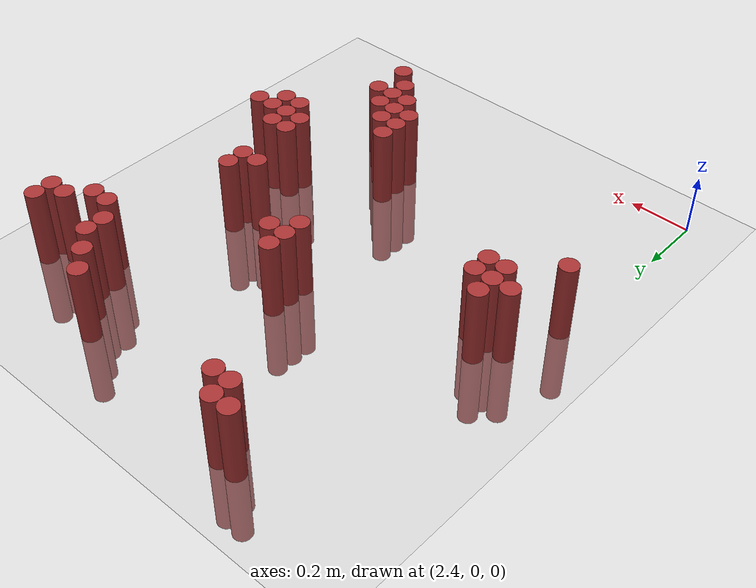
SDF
<sdf version="1.6">
 <world name="default">
  <model name="ground_plane">
   <static>1</static>
   <link name="link">
    <collision name="collision">
     <geometry><plane><normal>0 0 1</normal><size>100 100</size></plane></geometry>
     <surface><friction><ode><mu>100</mu><mu2>50</mu2></ode></friction></surface>
    </collision>
    <visual name="visual">
     <cast_shadows>0</cast_shadows>
     <geometry><plane><normal>0 0 1</normal><size>100 100</size></plane></geometry>
     <material>
      <script><uri>file://media/materials/scripts/gazebo.material</uri><name>Gazebo/Grey</name></script>
     </material>
    </visual>
   </link>
  </model>
  <model name="unit_cylinder_151">
   <static>1</static>
   <pose>2.730000 1.590000 0.000000 0.000000 0.000000 0.000000</pose>
   <link name="link">
    <inertial>
     <mass>1</mass>
     <inertia><ixx>0.145833</ixx><ixy>0</ixy><ixz>0</ixz><iyy>0.145833</iyy><iyz>0</iyz><izz>0.125</izz></inertia>
    </inertial>
    <collision name="collision">
     <geometry><cylinder><radius>0.030000</radius><length>0.5</length></cylinder></geometry>
    </collision>
    <visual name="visual">
     <geometry><cylinder><radius>0.030000</radius><length>0.5</length></cylinder></geometry>
     <material>
      <ambient>0.648000 0.192000 0.192000 1</ambient>
      <diffuse>0.648000 0.192000 0.192000 1</diffuse>
     </material>
     <material>
      <script><name>Gazebo/Grey</name><uri>file://media/materials/scripts/gazebo.material</uri></script>
     </material>
    </visual>
   </link>
  </model>
  <model name="unit_cylinder_152">
   <static>1</static>
   <pose>2.790000 1.590000 0.000000 0.000000 0.000000 0.000000</pose>
   <link name="link">
    <inertial>
     <mass>1</mass>
     <inertia><ixx>0.145833</ixx><ixy>0</ixy><ixz>0</ixz><iyy>0.145833</iyy><iyz>0</iyz><izz>0.125</izz></inertia>
    </inertial>
    <collision name="collision">
     <geometry><cylinder><radius>0.030000</radius><length>0.5</length></cylinder></geometry>
    </collision>
    <visual name="visual">
     <geometry><cylinder><radius>0.030000</radius><length>0.5</length></cylinder></geometry>
     <material>
      <ambient>0.648000 0.192000 0.192000 1</ambient>
      <diffuse>0.648000 0.192000 0.192000 1</diffuse>
     </material>
     <material>
      <script><name>Gazebo/Grey</name><uri>file://media/materials/scripts/gazebo.material</uri></script>
     </material>
    </visual>
   </link>
  </model>
  <model name="unit_cylinder_156">
   <static>1</static>
   <pose>2.790000 1.530000 0.000000 0.000000 0.000000 0.000000</pose>
   <link name="link">
    <inertial>
     <mass>1</mass>
     <inertia><ixx>0.145833</ixx><ixy>0</ixy><ixz>0</ixz><iyy>0.145833</iyy><iyz>0</iyz><izz>0.125</izz></inertia>
    </inertial>
    <collision name="collision">
     <geometry><cylinder><radius>0.030000</radius><length>0.5</length></cylinder></geometry>
    </collision>
    <visual name="visual">
     <geometry><cylinder><radius>0.030000</radius><length>0.5</length></cylinder></geometry>
     <material>
      <ambient>0.648000 0.192000 0.192000 1</ambient>
      <diffuse>0.648000 0.192000 0.192000 1</diffuse>
     </material>
     <material>
      <script><name>Gazebo/Grey</name><uri>file://media/materials/scripts/gazebo.material</uri></script>
     </material>
    </visual>
   </link>
  </model>
  <model name="unit_cylinder_157">
   <static>1</static>
   <pose>2.850000 1.530000 0.000000 0.000000 0.000000 0.000000</pose>
   <link name="link">
    <inertial>
     <mass>1</mass>
     <inertia><ixx>0.145833</ixx><ixy>0</ixy><ixz>0</ixz><iyy>0.145833</iyy><iyz>0</iyz><izz>0.125</izz></inertia>
    </inertial>
    <collision name="collision">
     <geometry><cylinder><radius>0.030000</radius><length>0.5</length></cylinder></geometry>
    </collision>
    <visual name="visual">
     <geometry><cylinder><radius>0.030000</radius><length>0.5</length></cylinder></geometry>
     <material>
      <ambient>0.648000 0.192000 0.192000 1</ambient>
      <diffuse>0.648000 0.192000 0.192000 1</diffuse>
     </material>
     <material>
      <script><name>Gazebo/Grey</name><uri>file://media/materials/scripts/gazebo.material</uri></script>
     </material>
    </visual>
   </link>
  </model>
  <model name="unit_cylinder_158">
   <static>1</static>
   <pose>3.390000 1.530000 0.000000 0.000000 0.000000 0.000000</pose>
   <link name="link">
    <inertial>
     <mass>1</mass>
     <inertia><ixx>0.145833</ixx><ixy>0</ixy><ixz>0</ixz><iyy>0.145833</iyy><iyz>0</iyz><izz>0.125</izz></inertia>
    </inertial>
    <collision name="collision">
     <geometry><cylinder><radius>0.030000</radius><length>0.5</length></cylinder></geometry>
    </collision>
    <visual name="visual">
     <geometry><cylinder><radius>0.030000</radius><length>0.5</length></cylinder></geometry>
     <material>
      <ambient>0.648000 0.192000 0.192000 1</ambient>
      <diffuse>0.648000 0.192000 0.192000 1</diffuse>
     </material>
     <material>
      <script><name>Gazebo/Grey</name><uri>file://media/materials/scripts/gazebo.material</uri></script>
     </material>
    </visual>
   </link>
  </model>
  <model name="unit_cylinder_159">
   <static>1</static>
   <pose>3.450000 1.470000 0.000000 0.000000 0.000000 0.000000</pose>
   <link name="link">
    <inertial>
     <mass>1</mass>
     <inertia><ixx>0.145833</ixx><ixy>0</ixy><ixz>0</ixz><iyy>0.145833</iyy><iyz>0</iyz><izz>0.125</izz></inertia>
    </inertial>
    <collision name="collision">
     <geometry><cylinder><radius>0.030000</radius><length>0.5</length></cylinder></geometry>
    </collision>
    <visual name="visual">
     <geometry><cylinder><radius>0.030000</radius><length>0.5</length></cylinder></geometry>
     <material>
      <ambient>0.648000 0.192000 0.192000 1</ambient>
      <diffuse>0.648000 0.192000 0.192000 1</diffuse>
     </material>
     <material>
      <script><name>Gazebo/Grey</name><uri>file://media/materials/scripts/gazebo.material</uri></script>
     </material>
    </visual>
   </link>
  </model>
  <model name="unit_cylinder_160">
   <static>1</static>
   <pose>3.510000 1.410000 0.000000 0.000000 0.000000 0.000000</pose>
   <link name="link">
    <inertial>
     <mass>1</mass>
     <inertia><ixx>0.145833</ixx><ixy>0</ixy><ixz>0</ixz><iyy>0.145833</iyy><iyz>0</iyz><izz>0.125</izz></inertia>
    </inertial>
    <collision name="collision">
     <geometry><cylinder><radius>0.030000</radius><length>0.5</length></cylinder></geometry>
    </collision>
    <visual name="visual">
     <geometry><cylinder><radius>0.030000</radius><length>0.5</length></cylinder></geometry>
     <material>
      <ambient>0.648000 0.192000 0.192000 1</ambient>
      <diffuse>0.648000 0.192000 0.192000 1</diffuse>
     </material>
     <material>
      <script><name>Gazebo/Grey</name><uri>file://media/materials/scripts/gazebo.material</uri></script>
     </material>
    </visual>
   </link>
  </model>
  <model name="unit_cylinder_161">
   <static>1</static>
   <pose>3.750000 1.410000 0.000000 0.000000 0.000000 0.000000</pose>
   <link name="link">
    <inertial>
     <mass>1</mass>
     <inertia><ixx>0.145833</ixx><ixy>0</ixy><ixz>0</ixz><iyy>0.145833</iyy><iyz>0</iyz><izz>0.125</izz></inertia>
    </inertial>
    <collision name="collision">
     <geometry><cylinder><radius>0.030000</radius><length>0.5</length></cylinder></geometry>
    </collision>
    <visual name="visual">
     <geometry><cylinder><radius>0.030000</radius><length>0.5</length></cylinder></geometry>
     <material>
      <ambient>0.648000 0.192000 0.192000 1</ambient>
      <diffuse>0.648000 0.192000 0.192000 1</diffuse>
     </material>
     <material>
      <script><name>Gazebo/Grey</name><uri>file://media/materials/scripts/gazebo.material</uri></script>
     </material>
    </visual>
   </link>
  </model>
  <model name="unit_cylinder_162">
   <static>1</static>
   <pose>3.510000 1.350000 0.000000 0.000000 0.000000 0.000000</pose>
   <link name="link">
    <inertial>
     <mass>1</mass>
     <inertia><ixx>0.145833</ixx><ixy>0</ixy><ixz>0</ixz><iyy>0.145833</iyy><iyz>0</iyz><izz>0.125</izz></inertia>
    </inertial>
    <collision name="collision">
     <geometry><cylinder><radius>0.030000</radius><length>0.5</length></cylinder></geometry>
    </collision>
    <visual name="visual">
     <geometry><cylinder><radius>0.030000</radius><length>0.5</length></cylinder></geometry>
     <material>
      <ambient>0.648000 0.192000 0.192000 1</ambient>
      <diffuse>0.648000 0.192000 0.192000 1</diffuse>
     </material>
     <material>
      <script><name>Gazebo/Grey</name><uri>file://media/materials/scripts/gazebo.material</uri></script>
     </material>
    </visual>
   </link>
  </model>
  <model name="unit_cylinder_163">
   <static>1</static>
   <pose>3.690000 1.350000 0.000000 0.000000 0.000000 0.000000</pose>
   <link name="link">
    <inertial>
     <mass>1</mass>
     <inertia><ixx>0.145833</ixx><ixy>0</ixy><ixz>0</ixz><iyy>0.145833</iyy><iyz>0</iyz><izz>0.125</izz></inertia>
    </inertial>
    <collision name="collision">
     <geometry><cylinder><radius>0.030000</radius><length>0.5</length></cylinder></geometry>
    </collision>
    <visual name="visual">
     <geometry><cylinder><radius>0.030000</radius><length>0.5</length></cylinder></geometry>
     <material>
      <ambient>0.648000 0.192000 0.192000 1</ambient>
      <diffuse>0.648000 0.192000 0.192000 1</diffuse>
     </material>
     <material>
      <script><name>Gazebo/Grey</name><uri>file://media/materials/scripts/gazebo.material</uri></script>
     </material>
    </visual>
   </link>
  </model>
  <model name="unit_cylinder_164">
   <static>1</static>
   <pose>3.750000 1.350000 0.000000 0.000000 0.000000 0.000000</pose>
   <link name="link">
    <inertial>
     <mass>1</mass>
     <inertia><ixx>0.145833</ixx><ixy>0</ixy><ixz>0</ixz><iyy>0.145833</iyy><iyz>0</iyz><izz>0.125</izz></inertia>
    </inertial>
    <collision name="collision">
     <geometry><cylinder><radius>0.030000</radius><length>0.5</length></cylinder></geometry>
    </collision>
    <visual name="visual">
     <geometry><cylinder><radius>0.030000</radius><length>0.5</length></cylinder></geometry>
     <material>
      <ambient>0.648000 0.192000 0.192000 1</ambient>
      <diffuse>0.648000 0.192000 0.192000 1</diffuse>
     </material>
     <material>
      <script><name>Gazebo/Grey</name><uri>file://media/materials/scripts/gazebo.material</uri></script>
     </material>
    </visual>
   </link>
  </model>
  <model name="unit_cylinder_167">
   <static>1</static>
   <pose>3.570000 1.290000 0.000000 0.000000 0.000000 0.000000</pose>
   <link name="link">
    <inertial>
     <mass>1</mass>
     <inertia><ixx>0.145833</ixx><ixy>0</ixy><ixz>0</ixz><iyy>0.145833</iyy><iyz>0</iyz><izz>0.125</izz></inertia>
    </inertial>
    <collision name="collision">
     <geometry><cylinder><radius>0.030000</radius><length>0.5</length></cylinder></geometry>
    </collision>
    <visual name="visual">
     <geometry><cylinder><radius>0.030000</radius><length>0.5</length></cylinder></geometry>
     <material>
      <ambient>0.648000 0.192000 0.192000 1</ambient>
      <diffuse>0.648000 0.192000 0.192000 1</diffuse>
     </material>
     <material>
      <script><name>Gazebo/Grey</name><uri>file://media/materials/scripts/gazebo.material</uri></script>
     </material>
    </visual>
   </link>
  </model>
  <model name="unit_cylinder_168">
   <static>1</static>
   <pose>3.630000 1.290000 0.000000 0.000000 0.000000 0.000000</pose>
   <link name="link">
    <inertial>
     <mass>1</mass>
     <inertia><ixx>0.145833</ixx><ixy>0</ixy><ixz>0</ixz><iyy>0.145833</iyy><iyz>0</iyz><izz>0.125</izz></inertia>
    </inertial>
    <collision name="collision">
     <geometry><cylinder><radius>0.030000</radius><length>0.5</length></cylinder></geometry>
    </collision>
    <visual name="visual">
     <geometry><cylinder><radius>0.030000</radius><length>0.5</length></cylinder></geometry>
     <material>
      <ambient>0.648000 0.192000 0.192000 1</ambient>
      <diffuse>0.648000 0.192000 0.192000 1</diffuse>
     </material>
     <material>
      <script><name>Gazebo/Grey</name><uri>file://media/materials/scripts/gazebo.material</uri></script>
     </material>
    </visual>
   </link>
  </model>
  <model name="unit_cylinder_172">
   <static>1</static>
   <pose>3.090000 1.110000 0.000000 0.000000 0.000000 0.000000</pose>
   <link name="link">
    <inertial>
     <mass>1</mass>
     <inertia><ixx>0.145833</ixx><ixy>0</ixy><ixz>0</ixz><iyy>0.145833</iyy><iyz>0</iyz><izz>0.125</izz></inertia>
    </inertial>
    <collision name="collision">
     <geometry><cylinder><radius>0.030000</radius><length>0.5</length></cylinder></geometry>
    </collision>
    <visual name="visual">
     <geometry><cylinder><radius>0.030000</radius><length>0.5</length></cylinder></geometry>
     <material>
      <ambient>0.648000 0.192000 0.192000 1</ambient>
      <diffuse>0.648000 0.192000 0.192000 1</diffuse>
     </material>
     <material>
      <script><name>Gazebo/Grey</name><uri>file://media/materials/scripts/gazebo.material</uri></script>
     </material>
    </visual>
   </link>
  </model>
  <model name="unit_cylinder_174">
   <static>1</static>
   <pose>3.090000 1.050000 0.000000 0.000000 0.000000 0.000000</pose>
   <link name="link">
    <inertial>
     <mass>1</mass>
     <inertia><ixx>0.145833</ixx><ixy>0</ixy><ixz>0</ixz><iyy>0.145833</iyy><iyz>0</iyz><izz>0.125</izz></inertia>
    </inertial>
    <collision name="collision">
     <geometry><cylinder><radius>0.030000</radius><length>0.5</length></cylinder></geometry>
    </collision>
    <visual name="visual">
     <geometry><cylinder><radius>0.030000</radius><length>0.5</length></cylinder></geometry>
     <material>
      <ambient>0.648000 0.192000 0.192000 1</ambient>
      <diffuse>0.648000 0.192000 0.192000 1</diffuse>
     </material>
     <material>
      <script><name>Gazebo/Grey</name><uri>file://media/materials/scripts/gazebo.material</uri></script>
     </material>
    </visual>
   </link>
  </model>
  <model name="unit_cylinder_175">
   <static>1</static>
   <pose>3.150000 1.050000 0.000000 0.000000 0.000000 0.000000</pose>
   <link name="link">
    <inertial>
     <mass>1</mass>
     <inertia><ixx>0.145833</ixx><ixy>0</ixy><ixz>0</ixz><iyy>0.145833</iyy><iyz>0</iyz><izz>0.125</izz></inertia>
    </inertial>
    <collision name="collision">
     <geometry><cylinder><radius>0.030000</radius><length>0.5</length></cylinder></geometry>
    </collision>
    <visual name="visual">
     <geometry><cylinder><radius>0.030000</radius><length>0.5</length></cylinder></geometry>
     <material>
      <ambient>0.648000 0.192000 0.192000 1</ambient>
      <diffuse>0.648000 0.192000 0.192000 1</diffuse>
     </material>
     <material>
      <script><name>Gazebo/Grey</name><uri>file://media/materials/scripts/gazebo.material</uri></script>
     </material>
    </visual>
   </link>
  </model>
  <model name="unit_cylinder_178">
   <static>1</static>
   <pose>3.090000 0.990000 0.000000 0.000000 0.000000 0.000000</pose>
   <link name="link">
    <inertial>
     <mass>1</mass>
     <inertia><ixx>0.145833</ixx><ixy>0</ixy><ixz>0</ixz><iyy>0.145833</iyy><iyz>0</iyz><izz>0.125</izz></inertia>
    </inertial>
    <collision name="collision">
     <geometry><cylinder><radius>0.030000</radius><length>0.5</length></cylinder></geometry>
    </collision>
    <visual name="visual">
     <geometry><cylinder><radius>0.030000</radius><length>0.5</length></cylinder></geometry>
     <material>
      <ambient>0.648000 0.192000 0.192000 1</ambient>
      <diffuse>0.648000 0.192000 0.192000 1</diffuse>
     </material>
     <material>
      <script><name>Gazebo/Grey</name><uri>file://media/materials/scripts/gazebo.material</uri></script>
     </material>
    </visual>
   </link>
  </model>
  <model name="unit_cylinder_181">
   <static>1</static>
   <pose>3.450000 0.930000 0.000000 0.000000 0.000000 0.000000</pose>
   <link name="link">
    <inertial>
     <mass>1</mass>
     <inertia><ixx>0.145833</ixx><ixy>0</ixy><ixz>0</ixz><iyy>0.145833</iyy><iyz>0</iyz><izz>0.125</izz></inertia>
    </inertial>
    <collision name="collision">
     <geometry><cylinder><radius>0.030000</radius><length>0.5</length></cylinder></geometry>
    </collision>
    <visual name="visual">
     <geometry><cylinder><radius>0.030000</radius><length>0.5</length></cylinder></geometry>
     <material>
      <ambient>0.648000 0.192000 0.192000 1</ambient>
      <diffuse>0.648000 0.192000 0.192000 1</diffuse>
     </material>
     <material>
      <script><name>Gazebo/Grey</name><uri>file://media/materials/scripts/gazebo.material</uri></script>
     </material>
    </visual>
   </link>
  </model>
  <model name="unit_cylinder_182">
   <static>1</static>
   <pose>2.550000 0.870000 0.000000 0.000000 0.000000 0.000000</pose>
   <link name="link">
    <inertial>
     <mass>1</mass>
     <inertia><ixx>0.145833</ixx><ixy>0</ixy><ixz>0</ixz><iyy>0.145833</iyy><iyz>0</iyz><izz>0.125</izz></inertia>
    </inertial>
    <collision name="collision">
     <geometry><cylinder><radius>0.030000</radius><length>0.5</length></cylinder></geometry>
    </collision>
    <visual name="visual">
     <geometry><cylinder><radius>0.030000</radius><length>0.5</length></cylinder></geometry>
     <material>
      <ambient>0.648000 0.192000 0.192000 1</ambient>
      <diffuse>0.648000 0.192000 0.192000 1</diffuse>
     </material>
     <material>
      <script><name>Gazebo/Grey</name><uri>file://media/materials/scripts/gazebo.material</uri></script>
     </material>
    </visual>
   </link>
  </model>
  <model name="unit_cylinder_183">
   <static>1</static>
   <pose>3.390000 0.870000 0.000000 0.000000 0.000000 0.000000</pose>
   <link name="link">
    <inertial>
     <mass>1</mass>
     <inertia><ixx>0.145833</ixx><ixy>0</ixy><ixz>0</ixz><iyy>0.145833</iyy><iyz>0</iyz><izz>0.125</izz></inertia>
    </inertial>
    <collision name="collision">
     <geometry><cylinder><radius>0.030000</radius><length>0.5</length></cylinder></geometry>
    </collision>
    <visual name="visual">
     <geometry><cylinder><radius>0.030000</radius><length>0.5</length></cylinder></geometry>
     <material>
      <ambient>0.648000 0.192000 0.192000 1</ambient>
      <diffuse>0.648000 0.192000 0.192000 1</diffuse>
     </material>
     <material>
      <script><name>Gazebo/Grey</name><uri>file://media/materials/scripts/gazebo.material</uri></script>
     </material>
    </visual>
   </link>
  </model>
  <model name="unit_cylinder_184">
   <static>1</static>
   <pose>3.450000 0.870000 0.000000 0.000000 0.000000 0.000000</pose>
   <link name="link">
    <inertial>
     <mass>1</mass>
     <inertia><ixx>0.145833</ixx><ixy>0</ixy><ixz>0</ixz><iyy>0.145833</iyy><iyz>0</iyz><izz>0.125</izz></inertia>
    </inertial>
    <collision name="collision">
     <geometry><cylinder><radius>0.030000</radius><length>0.5</length></cylinder></geometry>
    </collision>
    <visual name="visual">
     <geometry><cylinder><radius>0.030000</radius><length>0.5</length></cylinder></geometry>
     <material>
      <ambient>0.648000 0.192000 0.192000 1</ambient>
      <diffuse>0.648000 0.192000 0.192000 1</diffuse>
     </material>
     <material>
      <script><name>Gazebo/Grey</name><uri>file://media/materials/scripts/gazebo.material</uri></script>
     </material>
    </visual>
   </link>
  </model>
  <model name="unit_cylinder_185">
   <static>1</static>
   <pose>2.490000 0.810000 0.000000 0.000000 0.000000 0.000000</pose>
   <link name="link">
    <inertial>
     <mass>1</mass>
     <inertia><ixx>0.145833</ixx><ixy>0</ixy><ixz>0</ixz><iyy>0.145833</iyy><iyz>0</iyz><izz>0.125</izz></inertia>
    </inertial>
    <collision name="collision">
     <geometry><cylinder><radius>0.030000</radius><length>0.5</length></cylinder></geometry>
    </collision>
    <visual name="visual">
     <geometry><cylinder><radius>0.030000</radius><length>0.5</length></cylinder></geometry>
     <material>
      <ambient>0.648000 0.192000 0.192000 1</ambient>
      <diffuse>0.648000 0.192000 0.192000 1</diffuse>
     </material>
     <material>
      <script><name>Gazebo/Grey</name><uri>file://media/materials/scripts/gazebo.material</uri></script>
     </material>
    </visual>
   </link>
  </model>
  <model name="unit_cylinder_186">
   <static>1</static>
   <pose>2.550000 0.810000 0.000000 0.000000 0.000000 0.000000</pose>
   <link name="link">
    <inertial>
     <mass>1</mass>
     <inertia><ixx>0.145833</ixx><ixy>0</ixy><ixz>0</ixz><iyy>0.145833</iyy><iyz>0</iyz><izz>0.125</izz></inertia>
    </inertial>
    <collision name="collision">
     <geometry><cylinder><radius>0.030000</radius><length>0.5</length></cylinder></geometry>
    </collision>
    <visual name="visual">
     <geometry><cylinder><radius>0.030000</radius><length>0.5</length></cylinder></geometry>
     <material>
      <ambient>0.648000 0.192000 0.192000 1</ambient>
      <diffuse>0.648000 0.192000 0.192000 1</diffuse>
     </material>
     <material>
      <script><name>Gazebo/Grey</name><uri>file://media/materials/scripts/gazebo.material</uri></script>
     </material>
    </visual>
   </link>
  </model>
  <model name="unit_cylinder_187">
   <static>1</static>
   <pose>2.610000 0.810000 0.000000 0.000000 0.000000 0.000000</pose>
   <link name="link">
    <inertial>
     <mass>1</mass>
     <inertia><ixx>0.145833</ixx><ixy>0</ixy><ixz>0</ixz><iyy>0.145833</iyy><iyz>0</iyz><izz>0.125</izz></inertia>
    </inertial>
    <collision name="collision">
     <geometry><cylinder><radius>0.030000</radius><length>0.5</length></cylinder></geometry>
    </collision>
    <visual name="visual">
     <geometry><cylinder><radius>0.030000</radius><length>0.5</length></cylinder></geometry>
     <material>
      <ambient>0.648000 0.192000 0.192000 1</ambient>
      <diffuse>0.648000 0.192000 0.192000 1</diffuse>
     </material>
     <material>
      <script><name>Gazebo/Grey</name><uri>file://media/materials/scripts/gazebo.material</uri></script>
     </material>
    </visual>
   </link>
  </model>
  <model name="unit_cylinder_188">
   <static>1</static>
   <pose>2.550000 0.750000 0.000000 0.000000 0.000000 0.000000</pose>
   <link name="link">
    <inertial>
     <mass>1</mass>
     <inertia><ixx>0.145833</ixx><ixy>0</ixy><ixz>0</ixz><iyy>0.145833</iyy><iyz>0</iyz><izz>0.125</izz></inertia>
    </inertial>
    <collision name="collision">
     <geometry><cylinder><radius>0.030000</radius><length>0.5</length></cylinder></geometry>
    </collision>
    <visual name="visual">
     <geometry><cylinder><radius>0.030000</radius><length>0.5</length></cylinder></geometry>
     <material>
      <ambient>0.648000 0.192000 0.192000 1</ambient>
      <diffuse>0.648000 0.192000 0.192000 1</diffuse>
     </material>
     <material>
      <script><name>Gazebo/Grey</name><uri>file://media/materials/scripts/gazebo.material</uri></script>
     </material>
    </visual>
   </link>
  </model>
  <model name="unit_cylinder_189">
   <static>1</static>
   <pose>2.610000 0.750000 0.000000 0.000000 0.000000 0.000000</pose>
   <link name="link">
    <inertial>
     <mass>1</mass>
     <inertia><ixx>0.145833</ixx><ixy>0</ixy><ixz>0</ixz><iyy>0.145833</iyy><iyz>0</iyz><izz>0.125</izz></inertia>
    </inertial>
    <collision name="collision">
     <geometry><cylinder><radius>0.030000</radius><length>0.5</length></cylinder></geometry>
    </collision>
    <visual name="visual">
     <geometry><cylinder><radius>0.030000</radius><length>0.5</length></cylinder></geometry>
     <material>
      <ambient>0.648000 0.192000 0.192000 1</ambient>
      <diffuse>0.648000 0.192000 0.192000 1</diffuse>
     </material>
     <material>
      <script><name>Gazebo/Grey</name><uri>file://media/materials/scripts/gazebo.material</uri></script>
     </material>
    </visual>
   </link>
  </model>
  <model name="unit_cylinder_191">
   <static>1</static>
   <pose>3.450000 0.690000 0.000000 0.000000 0.000000 0.000000</pose>
   <link name="link">
    <inertial>
     <mass>1</mass>
     <inertia><ixx>0.145833</ixx><ixy>0</ixy><ixz>0</ixz><iyy>0.145833</iyy><iyz>0</iyz><izz>0.125</izz></inertia>
    </inertial>
    <collision name="collision">
     <geometry><cylinder><radius>0.030000</radius><length>0.5</length></cylinder></geometry>
    </collision>
    <visual name="visual">
     <geometry><cylinder><radius>0.030000</radius><length>0.5</length></cylinder></geometry>
     <material>
      <ambient>0.648000 0.192000 0.192000 1</ambient>
      <diffuse>0.648000 0.192000 0.192000 1</diffuse>
     </material>
     <material>
      <script><name>Gazebo/Grey</name><uri>file://media/materials/scripts/gazebo.material</uri></script>
     </material>
    </visual>
   </link>
  </model>
  <model name="unit_cylinder_192">
   <static>1</static>
   <pose>3.510000 0.690000 0.000000 0.000000 0.000000 0.000000</pose>
   <link name="link">
    <inertial>
     <mass>1</mass>
     <inertia><ixx>0.145833</ixx><ixy>0</ixy><ixz>0</ixz><iyy>0.145833</iyy><iyz>0</iyz><izz>0.125</izz></inertia>
    </inertial>
    <collision name="collision">
     <geometry><cylinder><radius>0.030000</radius><length>0.5</length></cylinder></geometry>
    </collision>
    <visual name="visual">
     <geometry><cylinder><radius>0.030000</radius><length>0.5</length></cylinder></geometry>
     <material>
      <ambient>0.648000 0.192000 0.192000 1</ambient>
      <diffuse>0.648000 0.192000 0.192000 1</diffuse>
     </material>
     <material>
      <script><name>Gazebo/Grey</name><uri>file://media/materials/scripts/gazebo.material</uri></script>
     </material>
    </visual>
   </link>
  </model>
  <model name="unit_cylinder_194">
   <static>1</static>
   <pose>2.430000 0.630000 0.000000 0.000000 0.000000 0.000000</pose>
   <link name="link">
    <inertial>
     <mass>1</mass>
     <inertia><ixx>0.145833</ixx><ixy>0</ixy><ixz>0</ixz><iyy>0.145833</iyy><iyz>0</iyz><izz>0.125</izz></inertia>
    </inertial>
    <collision name="collision">
     <geometry><cylinder><radius>0.030000</radius><length>0.5</length></cylinder></geometry>
    </collision>
    <visual name="visual">
     <geometry><cylinder><radius>0.030000</radius><length>0.5</length></cylinder></geometry>
     <material>
      <ambient>0.648000 0.192000 0.192000 1</ambient>
      <diffuse>0.648000 0.192000 0.192000 1</diffuse>
     </material>
     <material>
      <script><name>Gazebo/Grey</name><uri>file://media/materials/scripts/gazebo.material</uri></script>
     </material>
    </visual>
   </link>
  </model>
  <model name="unit_cylinder_195">
   <static>1</static>
   <pose>3.450000 0.630000 0.000000 0.000000 0.000000 0.000000</pose>
   <link name="link">
    <inertial>
     <mass>1</mass>
     <inertia><ixx>0.145833</ixx><ixy>0</ixy><ixz>0</ixz><iyy>0.145833</iyy><iyz>0</iyz><izz>0.125</izz></inertia>
    </inertial>
    <collision name="collision">
     <geometry><cylinder><radius>0.030000</radius><length>0.5</length></cylinder></geometry>
    </collision>
    <visual name="visual">
     <geometry><cylinder><radius>0.030000</radius><length>0.5</length></cylinder></geometry>
     <material>
      <ambient>0.648000 0.192000 0.192000 1</ambient>
      <diffuse>0.648000 0.192000 0.192000 1</diffuse>
     </material>
     <material>
      <script><name>Gazebo/Grey</name><uri>file://media/materials/scripts/gazebo.material</uri></script>
     </material>
    </visual>
   </link>
  </model>
  <model name="unit_cylinder_196">
   <static>1</static>
   <pose>3.510000 0.630000 0.000000 0.000000 0.000000 0.000000</pose>
   <link name="link">
    <inertial>
     <mass>1</mass>
     <inertia><ixx>0.145833</ixx><ixy>0</ixy><ixz>0</ixz><iyy>0.145833</iyy><iyz>0</iyz><izz>0.125</izz></inertia>
    </inertial>
    <collision name="collision">
     <geometry><cylinder><radius>0.030000</radius><length>0.5</length></cylinder></geometry>
    </collision>
    <visual name="visual">
     <geometry><cylinder><radius>0.030000</radius><length>0.5</length></cylinder></geometry>
     <material>
      <ambient>0.648000 0.192000 0.192000 1</ambient>
      <diffuse>0.648000 0.192000 0.192000 1</diffuse>
     </material>
     <material>
      <script><name>Gazebo/Grey</name><uri>file://media/materials/scripts/gazebo.material</uri></script>
     </material>
    </visual>
   </link>
  </model>
  <model name="unit_cylinder_197">
   <static>1</static>
   <pose>3.570000 0.630000 0.000000 0.000000 0.000000 0.000000</pose>
   <link name="link">
    <inertial>
     <mass>1</mass>
     <inertia><ixx>0.145833</ixx><ixy>0</ixy><ixz>0</ixz><iyy>0.145833</iyy><iyz>0</iyz><izz>0.125</izz></inertia>
    </inertial>
    <collision name="collision">
     <geometry><cylinder><radius>0.030000</radius><length>0.5</length></cylinder></geometry>
    </collision>
    <visual name="visual">
     <geometry><cylinder><radius>0.030000</radius><length>0.5</length></cylinder></geometry>
     <material>
      <ambient>0.648000 0.192000 0.192000 1</ambient>
      <diffuse>0.648000 0.192000 0.192000 1</diffuse>
     </material>
     <material>
      <script><name>Gazebo/Grey</name><uri>file://media/materials/scripts/gazebo.material</uri></script>
     </material>
    </visual>
   </link>
  </model>
  <model name="unit_cylinder_198">
   <static>1</static>
   <pose>3.630000 0.630000 0.000000 0.000000 0.000000 0.000000</pose>
   <link name="link">
    <inertial>
     <mass>1</mass>
     <inertia><ixx>0.145833</ixx><ixy>0</ixy><ixz>0</ixz><iyy>0.145833</iyy><iyz>0</iyz><izz>0.125</izz></inertia>
    </inertial>
    <collision name="collision">
     <geometry><cylinder><radius>0.030000</radius><length>0.5</length></cylinder></geometry>
    </collision>
    <visual name="visual">
     <geometry><cylinder><radius>0.030000</radius><length>0.5</length></cylinder></geometry>
     <material>
      <ambient>0.648000 0.192000 0.192000 1</ambient>
      <diffuse>0.648000 0.192000 0.192000 1</diffuse>
     </material>
     <material>
      <script><name>Gazebo/Grey</name><uri>file://media/materials/scripts/gazebo.material</uri></script>
     </material>
    </visual>
   </link>
  </model>
  <model name="unit_cylinder_199">
   <static>1</static>
   <pose>3.510000 0.570000 0.000000 0.000000 0.000000 0.000000</pose>
   <link name="link">
    <inertial>
     <mass>1</mass>
     <inertia><ixx>0.145833</ixx><ixy>0</ixy><ixz>0</ixz><iyy>0.145833</iyy><iyz>0</iyz><izz>0.125</izz></inertia>
    </inertial>
    <collision name="collision">
     <geometry><cylinder><radius>0.030000</radius><length>0.5</length></cylinder></geometry>
    </collision>
    <visual name="visual">
     <geometry><cylinder><radius>0.030000</radius><length>0.5</length></cylinder></geometry>
     <material>
      <ambient>0.648000 0.192000 0.192000 1</ambient>
      <diffuse>0.648000 0.192000 0.192000 1</diffuse>
     </material>
     <material>
      <script><name>Gazebo/Grey</name><uri>file://media/materials/scripts/gazebo.material</uri></script>
     </material>
    </visual>
   </link>
  </model>
  <model name="unit_cylinder_200">
   <static>1</static>
   <pose>3.570000 0.570000 0.000000 0.000000 0.000000 0.000000</pose>
   <link name="link">
    <inertial>
     <mass>1</mass>
     <inertia><ixx>0.145833</ixx><ixy>0</ixy><ixz>0</ixz><iyy>0.145833</iyy><iyz>0</iyz><izz>0.125</izz></inertia>
    </inertial>
    <collision name="collision">
     <geometry><cylinder><radius>0.030000</radius><length>0.5</length></cylinder></geometry>
    </collision>
    <visual name="visual">
     <geometry><cylinder><radius>0.030000</radius><length>0.5</length></cylinder></geometry>
     <material>
      <ambient>0.648000 0.192000 0.192000 1</ambient>
      <diffuse>0.648000 0.192000 0.192000 1</diffuse>
     </material>
     <material>
      <script><name>Gazebo/Grey</name><uri>file://media/materials/scripts/gazebo.material</uri></script>
     </material>
    </visual>
   </link>
  </model>
  <model name="unit_cylinder_204">
   <static>1</static>
   <pose>3.210000 0.510000 0.000000 0.000000 0.000000 0.000000</pose>
   <link name="link">
    <inertial>
     <mass>1</mass>
     <inertia><ixx>0.145833</ixx><ixy>0</ixy><ixz>0</ixz><iyy>0.145833</iyy><iyz>0</iyz><izz>0.125</izz></inertia>
    </inertial>
    <collision name="collision">
     <geometry><cylinder><radius>0.030000</radius><length>0.5</length></cylinder></geometry>
    </collision>
    <visual name="visual">
     <geometry><cylinder><radius>0.030000</radius><length>0.5</length></cylinder></geometry>
     <material>
      <ambient>0.648000 0.192000 0.192000 1</ambient>
      <diffuse>0.648000 0.192000 0.192000 1</diffuse>
     </material>
     <material>
      <script><name>Gazebo/Grey</name><uri>file://media/materials/scripts/gazebo.material</uri></script>
     </material>
    </visual>
   </link>
  </model>
  <model name="unit_cylinder_209">
   <static>1</static>
   <pose>3.210000 0.450000 0.000000 0.000000 0.000000 0.000000</pose>
   <link name="link">
    <inertial>
     <mass>1</mass>
     <inertia><ixx>0.145833</ixx><ixy>0</ixy><ixz>0</ixz><iyy>0.145833</iyy><iyz>0</iyz><izz>0.125</izz></inertia>
    </inertial>
    <collision name="collision">
     <geometry><cylinder><radius>0.030000</radius><length>0.5</length></cylinder></geometry>
    </collision>
    <visual name="visual">
     <geometry><cylinder><radius>0.030000</radius><length>0.5</length></cylinder></geometry>
     <material>
      <ambient>0.648000 0.192000 0.192000 1</ambient>
      <diffuse>0.648000 0.192000 0.192000 1</diffuse>
     </material>
     <material>
      <script><name>Gazebo/Grey</name><uri>file://media/materials/scripts/gazebo.material</uri></script>
     </material>
    </visual>
   </link>
  </model>
  <model name="unit_cylinder_210">
   <static>1</static>
   <pose>3.270000 0.450000 0.000000 0.000000 0.000000 0.000000</pose>
   <link name="link">
    <inertial>
     <mass>1</mass>
     <inertia><ixx>0.145833</ixx><ixy>0</ixy><ixz>0</ixz><iyy>0.145833</iyy><iyz>0</iyz><izz>0.125</izz></inertia>
    </inertial>
    <collision name="collision">
     <geometry><cylinder><radius>0.030000</radius><length>0.5</length></cylinder></geometry>
    </collision>
    <visual name="visual">
     <geometry><cylinder><radius>0.030000</radius><length>0.5</length></cylinder></geometry>
     <material>
      <ambient>0.648000 0.192000 0.192000 1</ambient>
      <diffuse>0.648000 0.192000 0.192000 1</diffuse>
     </material>
     <material>
      <script><name>Gazebo/Grey</name><uri>file://media/materials/scripts/gazebo.material</uri></script>
     </material>
    </visual>
   </link>
  </model>
  <model name="unit_cylinder_213">
   <static>1</static>
   <pose>3.210000 0.390000 0.000000 0.000000 0.000000 0.000000</pose>
   <link name="link">
    <inertial>
     <mass>1</mass>
     <inertia><ixx>0.145833</ixx><ixy>0</ixy><ixz>0</ixz><iyy>0.145833</iyy><iyz>0</iyz><izz>0.125</izz></inertia>
    </inertial>
    <collision name="collision">
     <geometry><cylinder><radius>0.030000</radius><length>0.5</length></cylinder></geometry>
    </collision>
    <visual name="visual">
     <geometry><cylinder><radius>0.030000</radius><length>0.5</length></cylinder></geometry>
     <material>
      <ambient>0.648000 0.192000 0.192000 1</ambient>
      <diffuse>0.648000 0.192000 0.192000 1</diffuse>
     </material>
     <material>
      <script><name>Gazebo/Grey</name><uri>file://media/materials/scripts/gazebo.material</uri></script>
     </material>
    </visual>
   </link>
  </model>
  <model name="unit_cylinder_214">
   <static>1</static>
   <pose>3.270000 0.390000 0.000000 0.000000 0.000000 0.000000</pose>
   <link name="link">
    <inertial>
     <mass>1</mass>
     <inertia><ixx>0.145833</ixx><ixy>0</ixy><ixz>0</ixz><iyy>0.145833</iyy><iyz>0</iyz><izz>0.125</izz></inertia>
    </inertial>
    <collision name="collision">
     <geometry><cylinder><radius>0.030000</radius><length>0.5</length></cylinder></geometry>
    </collision>
    <visual name="visual">
     <geometry><cylinder><radius>0.030000</radius><length>0.5</length></cylinder></geometry>
     <material>
      <ambient>0.648000 0.192000 0.192000 1</ambient>
      <diffuse>0.648000 0.192000 0.192000 1</diffuse>
     </material>
     <material>
      <script><name>Gazebo/Grey</name><uri>file://media/materials/scripts/gazebo.material</uri></script>
     </material>
    </visual>
   </link>
  </model>
  <model name="unit_cylinder_215">
   <static>1</static>
   <pose>3.330000 0.390000 0.000000 0.000000 0.000000 0.000000</pose>
   <link name="link">
    <inertial>
     <mass>1</mass>
     <inertia><ixx>0.145833</ixx><ixy>0</ixy><ixz>0</ixz><iyy>0.145833</iyy><iyz>0</iyz><izz>0.125</izz></inertia>
    </inertial>
    <collision name="collision">
     <geometry><cylinder><radius>0.030000</radius><length>0.5</length></cylinder></geometry>
    </collision>
    <visual name="visual">
     <geometry><cylinder><radius>0.030000</radius><length>0.5</length></cylinder></geometry>
     <material>
      <ambient>0.648000 0.192000 0.192000 1</ambient>
      <diffuse>0.648000 0.192000 0.192000 1</diffuse>
     </material>
     <material>
      <script><name>Gazebo/Grey</name><uri>file://media/materials/scripts/gazebo.material</uri></script>
     </material>
    </visual>
   </link>
  </model>
  <model name="unit_cylinder_216">
   <static>1</static>
   <pose>3.270000 0.330000 0.000000 0.000000 0.000000 0.000000</pose>
   <link name="link">
    <inertial>
     <mass>1</mass>
     <inertia><ixx>0.145833</ixx><ixy>0</ixy><ixz>0</ixz><iyy>0.145833</iyy><iyz>0</iyz><izz>0.125</izz></inertia>
    </inertial>
    <collision name="collision">
     <geometry><cylinder><radius>0.030000</radius><length>0.5</length></cylinder></geometry>
    </collision>
    <visual name="visual">
     <geometry><cylinder><radius>0.030000</radius><length>0.5</length></cylinder></geometry>
     <material>
      <ambient>0.648000 0.192000 0.192000 1</ambient>
      <diffuse>0.648000 0.192000 0.192000 1</diffuse>
     </material>
     <material>
      <script><name>Gazebo/Grey</name><uri>file://media/materials/scripts/gazebo.material</uri></script>
     </material>
    </visual>
   </link>
  </model>
  <model name="unit_cylinder_217">
   <static>1</static>
   <pose>3.330000 0.330000 0.000000 0.000000 0.000000 0.000000</pose>
   <link name="link">
    <inertial>
     <mass>1</mass>
     <inertia><ixx>0.145833</ixx><ixy>0</ixy><ixz>0</ixz><iyy>0.145833</iyy><iyz>0</iyz><izz>0.125</izz></inertia>
    </inertial>
    <collision name="collision">
     <geometry><cylinder><radius>0.030000</radius><length>0.5</length></cylinder></geometry>
    </collision>
    <visual name="visual">
     <geometry><cylinder><radius>0.030000</radius><length>0.5</length></cylinder></geometry>
     <material>
      <ambient>0.648000 0.192000 0.192000 1</ambient>
      <diffuse>0.648000 0.192000 0.192000 1</diffuse>
     </material>
     <material>
      <script><name>Gazebo/Grey</name><uri>file://media/materials/scripts/gazebo.material</uri></script>
     </material>
    </visual>
   </link>
  </model>
  <model name="unit_cylinder_218">
   <static>1</static>
   <pose>3.390000 0.330000 0.000000 0.000000 0.000000 0.000000</pose>
   <link name="link">
    <inertial>
     <mass>1</mass>
     <inertia><ixx>0.145833</ixx><ixy>0</ixy><ixz>0</ixz><iyy>0.145833</iyy><iyz>0</iyz><izz>0.125</izz></inertia>
    </inertial>
    <collision name="collision">
     <geometry><cylinder><radius>0.030000</radius><length>0.5</length></cylinder></geometry>
    </collision>
    <visual name="visual">
     <geometry><cylinder><radius>0.030000</radius><length>0.5</length></cylinder></geometry>
     <material>
      <ambient>0.648000 0.192000 0.192000 1</ambient>
      <diffuse>0.648000 0.192000 0.192000 1</diffuse>
     </material>
     <material>
      <script><name>Gazebo/Grey</name><uri>file://media/materials/scripts/gazebo.material</uri></script>
     </material>
    </visual>
   </link>
  </model>
  <model name="unit_cylinder_219">
   <static>1</static>
   <pose>3.330000 0.270000 0.000000 0.000000 0.000000 0.000000</pose>
   <link name="link">
    <inertial>
     <mass>1</mass>
     <inertia><ixx>0.145833</ixx><ixy>0</ixy><ixz>0</ixz><iyy>0.145833</iyy><iyz>0</iyz><izz>0.125</izz></inertia>
    </inertial>
    <collision name="collision">
     <geometry><cylinder><radius>0.030000</radius><length>0.5</length></cylinder></geometry>
    </collision>
    <visual name="visual">
     <geometry><cylinder><radius>0.030000</radius><length>0.5</length></cylinder></geometry>
     <material>
      <ambient>0.648000 0.192000 0.192000 1</ambient>
      <diffuse>0.648000 0.192000 0.192000 1</diffuse>
     </material>
     <material>
      <script><name>Gazebo/Grey</name><uri>file://media/materials/scripts/gazebo.material</uri></script>
     </material>
    </visual>
   </link>
  </model>
  <model name="unit_cylinder_224">
   <static>1</static>
   <pose>3.390000 0.210000 0.000000 0.000000 0.000000 0.000000</pose>
   <link name="link">
    <inertial>
     <mass>1</mass>
     <inertia><ixx>0.145833</ixx><ixy>0</ixy><ixz>0</ixz><iyy>0.145833</iyy><iyz>0</iyz><izz>0.125</izz></inertia>
    </inertial>
    <collision name="collision">
     <geometry><cylinder><radius>0.030000</radius><length>0.5</length></cylinder></geometry>
    </collision>
    <visual name="visual">
     <geometry><cylinder><radius>0.030000</radius><length>0.5</length></cylinder></geometry>
     <material>
      <ambient>0.648000 0.192000 0.192000 1</ambient>
      <diffuse>0.648000 0.192000 0.192000 1</diffuse>
     </material>
     <material>
      <script><name>Gazebo/Grey</name><uri>file://media/materials/scripts/gazebo.material</uri></script>
     </material>
    </visual>
   </link>
  </model>
 </world>
</sdf>
